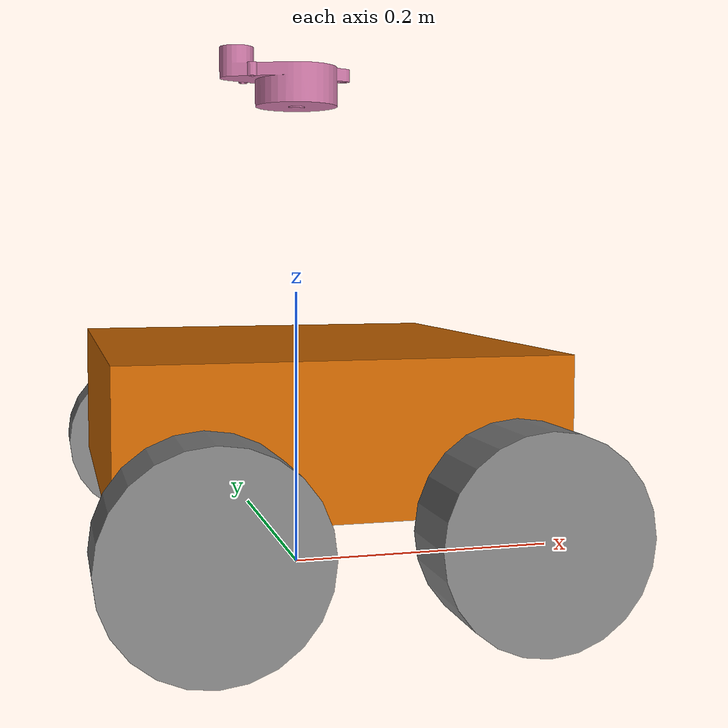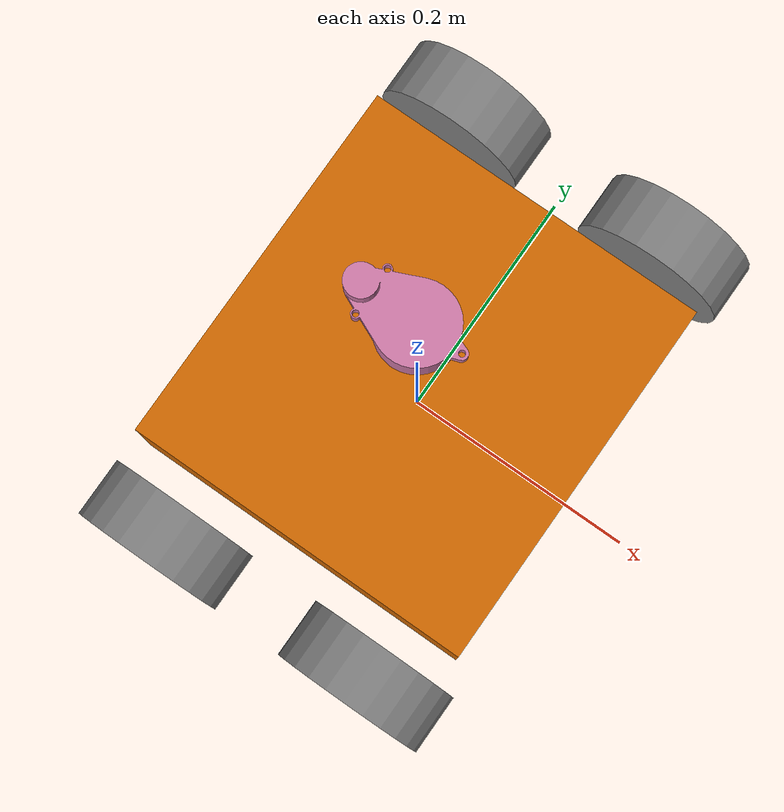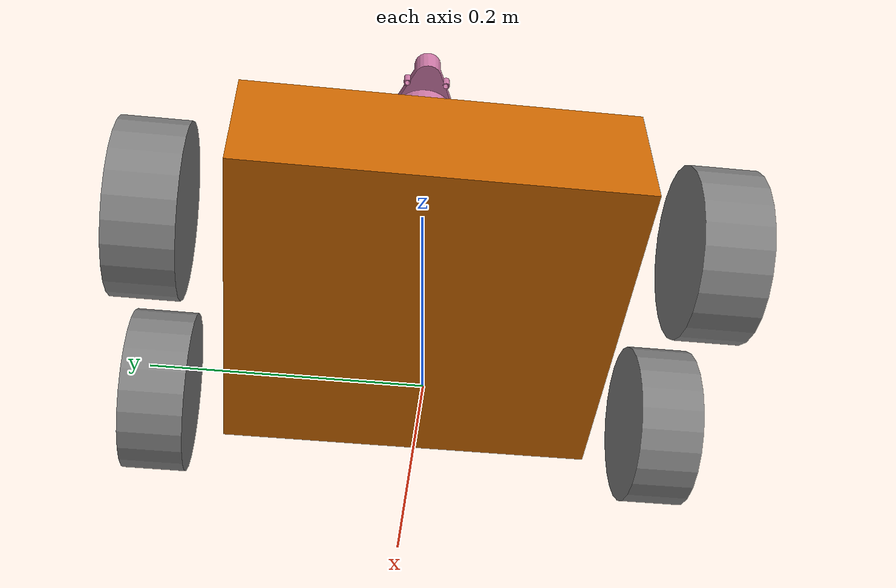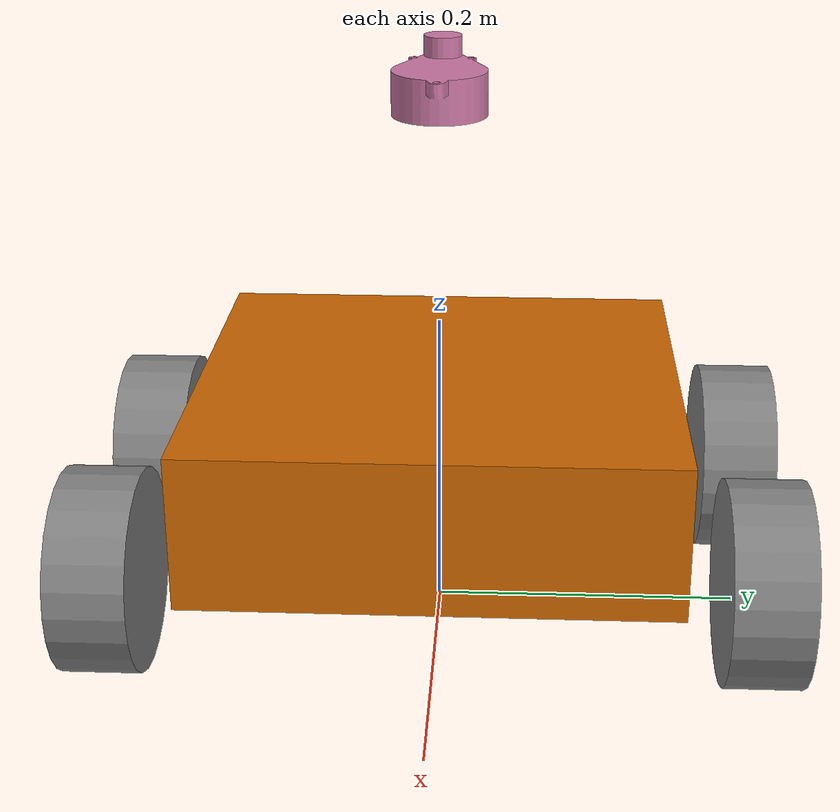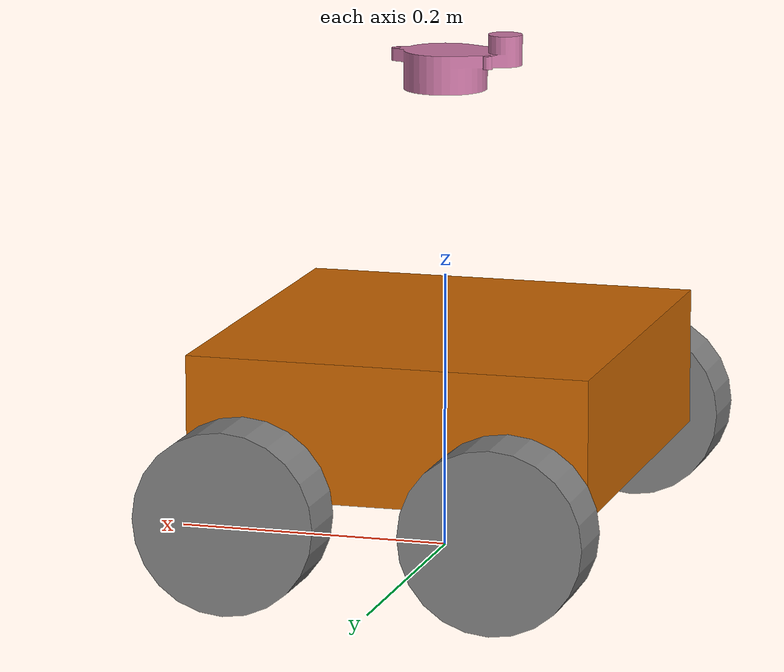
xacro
<?xml version="1.0"?>
<robot name="rmitbot_small" xmlns:xacro="http://ros.org/wiki/xacro">
    <xacro:arg name="use_sim" default="false"/>
    <xacro:arg name="controller_serial_port" default="/dev/serial/by-id/usb-1a86_USB_Serial-if00-port0"/>

    <xacro:property name="wheel_radius" value="0.065" />
    <xacro:property name="wheel_track_y" value="0.36" />
    <xacro:property name="wheel_base_x" value="0.19" />
    <xacro:property name="lidar_z" value="0.27" />

    <xacro:include filename="$(find rmitbot_description)/urdf/rmitbot_platform.xacro" />
    <xacro:include filename="$(find rmitbot_description)/urdf/rmitbot_gazebo.xacro" />
    <xacro:include filename="$(find rmitbot_description)/urdf/rmitbot_ros2_control.xacro" />
    <xacro:include filename="$(find rmitbot_description)/urdf/rmitbot_imu.xacro" />
    <xacro:include filename="$(find rmitbot_description)/urdf/rmitbot_laser.xacro" />

</robot>

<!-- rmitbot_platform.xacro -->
<robot name="rmitbot" xmlns:xacro="http://www.ros.org/wiki/xacro" xmlns:gz="http://gazebosim.org/schema">
  <material name="orange">
    <color rgba="0.8 0.4 0.0 1.0" />
  </material>
  <material name="black">
    <color rgba="0.5 0.5 0.5 1.0" />
  </material>
  <material name="white">
    <color rgba="1 1 1 1.0" />
  </material>

  <link name="base_footprint" />

  <joint name="base_joint" type="fixed">
    <parent link="base_footprint" />
    <child link="base_link" />
    <origin xyz="0 0 ${wheel_radius}" rpy="0 0 0" />
  </joint>

  <link name="base_link">
    <collision>
      <origin xyz="0 0 0.05" rpy="0 0 0" />
      <geometry>
         <box size="${wheel_base_x + 0.10} ${wheel_track_y - 0.05} 0.1" />
      </geometry>
    </collision>
    <visual>
      <origin xyz="0 0 0.05" rpy="0 0 0" />
      <geometry>
         <box size="${wheel_base_x + 0.10} ${wheel_track_y - 0.05} 0.1" />
      </geometry>
      <material name="orange" />
    </visual>
    <inertial>
      <origin xyz="0 0 0.5" rpy="0 0 0" />
      <mass value="1.5" />
      <inertia
        ixx="0.13"
        ixy="0.0"
        ixz="0.0"
        iyy="0.42"
        iyz="0.0"
        izz="0.48" />
    </inertial>
  </link>

  <joint name="front_left_wheel_joint" type="continuous">
    <origin xyz="${wheel_base_x/2} ${wheel_track_y/2} 0" rpy="-${pi/2} 0 0" />
    <parent link="base_link" />
    <child link="front_left_wheel" />
    <axis xyz="0 0 1" />
    <dynamics damping="0.2" />
  </joint>

  <link name="front_left_wheel">
    <collision>
      <origin xyz="0 0 .025" rpy="0 0 0" />
      <geometry>
        <sphere radius="${wheel_radius}" />
      </geometry>
    </collision>
    <visual>
      <origin xyz="0 0 .025" rpy="0 0 0" />
      <geometry>
        <cylinder radius="${wheel_radius}" length="0.05" />
      </geometry>
      <material name="black" />
    </visual>
    <inertial>
       <origin xyz="0 0 .025" rpy="0 0 0" />
      <mass value="0.5" />
      <inertia ixx="0.0025"
        ixy="0.0"
        ixz="0.0"
        iyy="0.0025"
        iyz="0.0"
        izz="0.0020" />
    </inertial>
  </link>

  <joint name="front_right_wheel_joint" type="continuous">
    <origin xyz="${wheel_base_x/2} -${wheel_track_y/2} 0." rpy="-${pi/2} 0 0" />
    <parent link="base_link" />
    <child link="front_right_wheel" />
    <axis xyz="0 0 1" />
    <dynamics damping="0.2" />
  </joint>
  <link name="front_right_wheel">
    <collision>
      <origin xyz="0 0 -.025" rpy="0 0 0" />
      <geometry>
        <sphere radius="${wheel_radius}" />
      </geometry>
    </collision>
    <visual>
      <origin xyz="0 0 -.025" rpy="0 0 0" />
      <geometry>
        <cylinder radius="${wheel_radius}" length="0.05" />
      </geometry>
      <material name="black" />
    </visual>
    <inertial>
      <origin xyz="0 0 -.025" rpy="0 0 0" />
      <mass value=".5" />
      <inertia ixx="0.0025"
        ixy="0.0"
        ixz="0.0"
        iyy="0.0025"
        iyz="0.0"
        izz="0.0020" />
    </inertial>
  </link>

  <joint name="rear_left_wheel_joint" type="continuous">
    <origin xyz="-${wheel_base_x/2} ${wheel_track_y/2} 0." rpy="-${pi/2} 0 0" />
    <parent link="base_link" />
    <child link="rear_left_wheel" />
    <axis xyz="0 0 1" />
    <dynamics damping="0.2" />
  </joint>
  <link name="rear_left_wheel">
    <collision>
       <origin xyz="0 0 .025" rpy="0 0 0" />
      <geometry>
        <sphere radius="${wheel_radius}" />
      </geometry>
    </collision>
    <visual>
       <origin xyz="0 0 .025" rpy="0 0 0" />
      <geometry>
        <cylinder radius="${wheel_radius}" length="0.05" />
      </geometry>
      <material name="black" />
    </visual>
    <inertial>
       <origin xyz="0 0 .025" rpy="0 0 0" />
      <mass value="0.5" />
      <inertia ixx="0.0025"
        ixy="0.0"
        ixz="0.0"
        iyy="0.0025"
        iyz="0.0"
        izz="0.0020" />
    </inertial>
  </link>

  <joint name="rear_right_wheel_joint" type="continuous">
    <origin xyz="-${wheel_base_x/2} -${wheel_track_y/2} 0." rpy="-${pi/2} 0 0" />
    <parent link="base_link" />
    <child link="rear_right_wheel" />
    <axis xyz="0 0 1" />
    <dynamics damping="0.2" />
  </joint>
  <link name="rear_right_wheel">
    <collision>
       <origin xyz="0 0 -.025" rpy="0 0 0" />
      <geometry>
        <sphere radius="${wheel_radius}" />
      </geometry>
    </collision>
    <visual>
       <origin xyz="0 0 -.025" rpy="0 0 0" />
      <geometry>
        <cylinder radius="${wheel_radius}" length="0.05" />
      </geometry>
      <material name="black" />
    </visual>
    <inertial>
       <origin xyz="0 0 -.025" rpy="0 0 0" />
      <mass value="0.5" />
      <inertia ixx="0.0025"
        ixy="0.0"
        ixz="0.0"
        iyy="0.0025"
        iyz="0.0"
        izz="0.0020" />
    </inertial>
  </link>
</robot>

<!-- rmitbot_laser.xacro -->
<robot xmlns:xacro="http://www.ros.org/wiki/xacro" name="rmitbot">
    <link name="laser_link">
        <inertial>
            <origin xyz="-0.012 -0.00038 -0.017" rpy="0 0 0" />
            <mass value="0.073" />
            <inertia    ixx="1.96E-05" ixy="-3.62E-07" ixz="4.28E-07"
                        iyy="2.41E-05" iyz="1.50E-08" izz="4.14E-05" />
        </inertial>
        <visual>
            <origin xyz="0 0 0" rpy="0 0 3.14" />
            <geometry>
                <mesh filename="package://rmitbot_description/meshes/laser_link.STL" />
            </geometry>
        </visual>
        <collision>
            <origin xyz="0 0 0" rpy="0 0 0" />
            <geometry>
                <mesh filename="package://rmitbot_description/meshes/laser_link.STL" />
            </geometry>
        </collision>
    </link>

    <joint name="laser_joint" type="fixed">
        <origin xyz="0. 0. ${lidar_z}" rpy="0 0 0" />
        <parent link="base_link" />
        <child link="laser_link" />
        <axis xyz="0 0 0" />
    </joint>

    <gazebo reference="laser_link">
        <sensor name="lidar" type="gpu_lidar">
            <plugin filename="gz-sim-sensors-system" name="gz::sim::systems::Sensors">
                <render_engine>ogre</render_engine>
            </plugin>
            <always_on>true</always_on>
            <visualize>true</visualize>
            <topic>scan</topic>
            <update_rate>5</update_rate>
            <gz_frame_id>laser_link</gz_frame_id>
            <lidar>
                <scan>
                    <horizontal>
                        <samples>360</samples>
                        <resolution>1.00000</resolution>
                        <min_angle>0.000000</min_angle>
                        <max_angle>6.280000</max_angle>
                    </horizontal>
                    <vertical>
                        <samples>3</samples>
                        <min_angle>-0.001</min_angle>
                        <max_angle>0.001</max_angle>
                    </vertical>
                </scan>
                <range>
                    <min>0.120000</min>
                    <max>12.0</max>
                    <resolution>0.02</resolution>
                </range>
                <noise>
                    <type>gaussian</type>
                    <mean>0.0</mean>
                    <stddev>0.01</stddev>
                </noise>
            </lidar>
        </sensor>
    </gazebo>
</robot>
